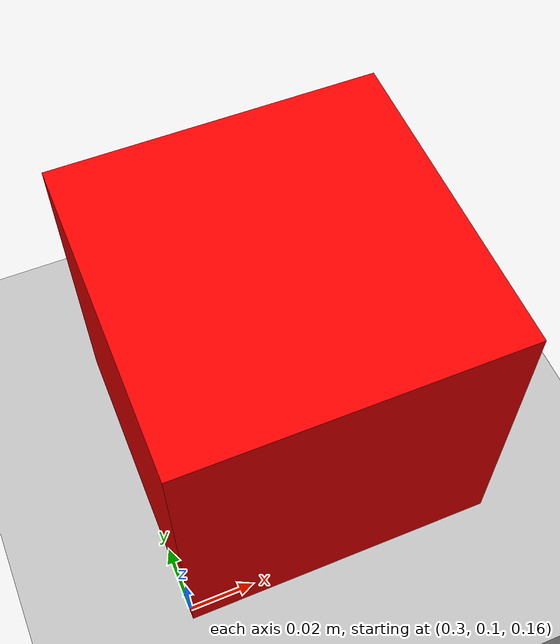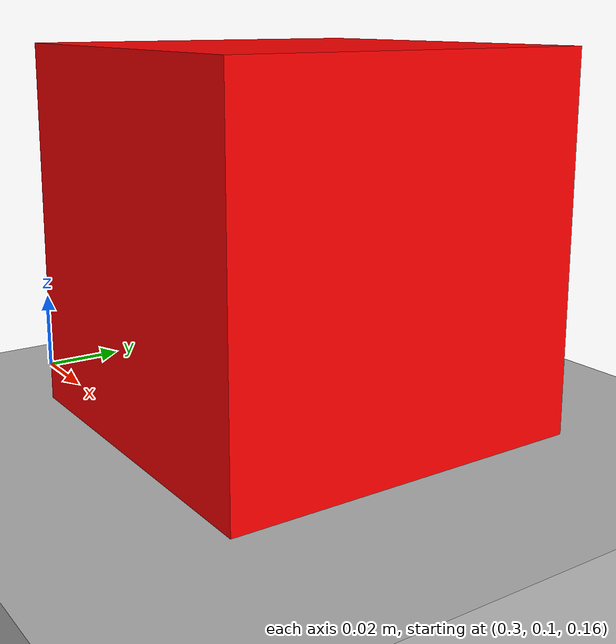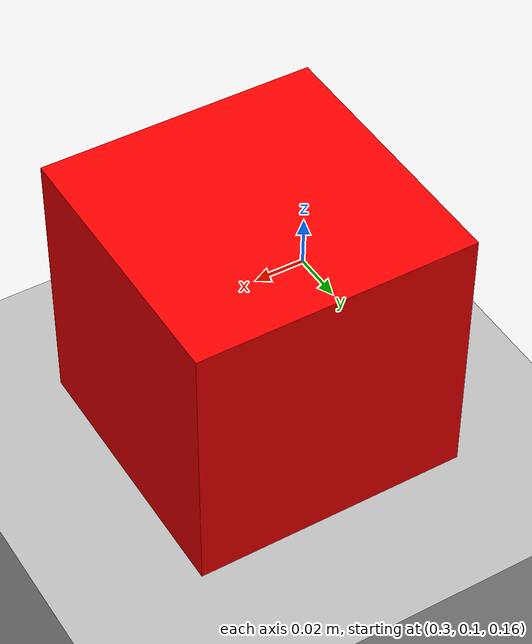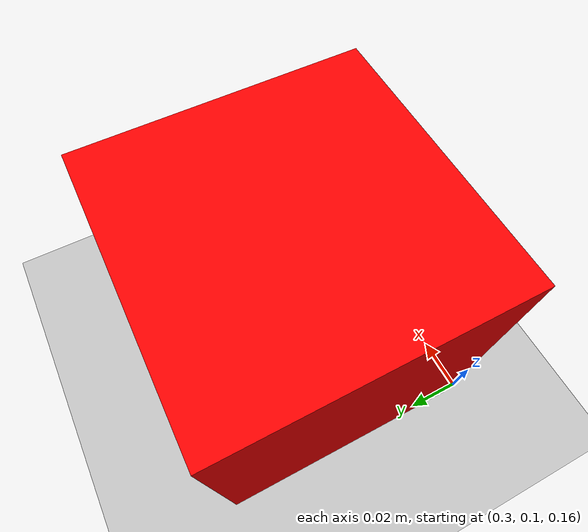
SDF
<?xml version="1.0"?>
<sdf version="1.6">
    <world name="shijie">

        <include>
            <uri>model://sun</uri>
        </include>
        <model name="table">
            <static>true</static>
            <pose>0.3 0.15 0.075 0 0 0</pose>
            <link name="table_link">
                <visual name="table">
                    <geometry>
                        <box>
                            <size>1.0 1.0 0.15</size>
                        </box>
                    </geometry>
                </visual>
                <collision name="table">
                    <geometry>
                        <box>
                            <size>1.0 1.0 0.15</size>
                        </box>
                    </geometry>
                </collision>
            </link>
        </model>
        <model name = "famhkuai">
            <pose>0.35 0.15 0.2 0 0 0</pose>
            <link name="cube">
                <visual  name = "cube">
                    <geometry>
                        <box>
                            <size>0.1 0.1 0.1</size>
                        </box>
                    </geometry>
                    <material>
                        <ambient>1 0 0 1</ambient>
                        <diffuse>1 0 0 1</diffuse>
                    </material>
                </visual>
                <collision name="collision">
                    <geometry>
                        <box>
                            <size>0.1 0.1 0.1</size>
                        </box>
                    </geometry>
                </collision>
                <inertial>
                    <mass>0.1</mass>
                    <inertia>
                        <ixx>1.6667e-4</ixx>
                        <iyy>1.6667e-4</iyy>
                        <izz>1.6667e-4</izz>
                        <ixy>0</ixy>
                        <ixz>0</ixz>
                        <iyz>0</iyz>
                    </inertia>
                </inertial>
            </link>
        </model>
    </world>
</sdf>
